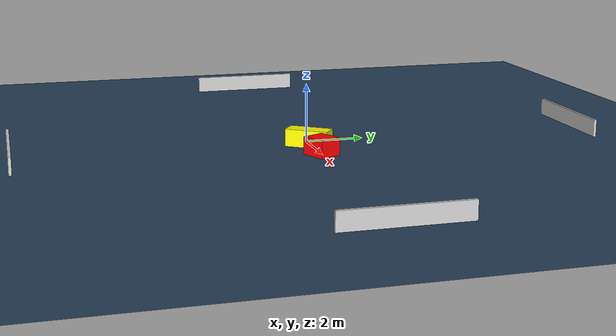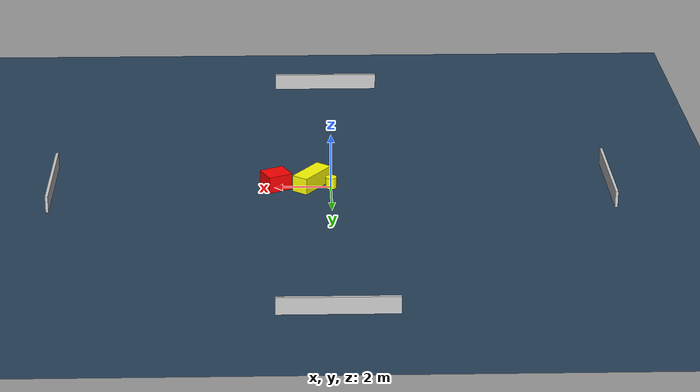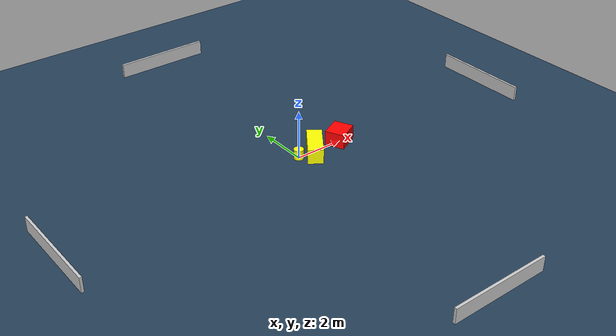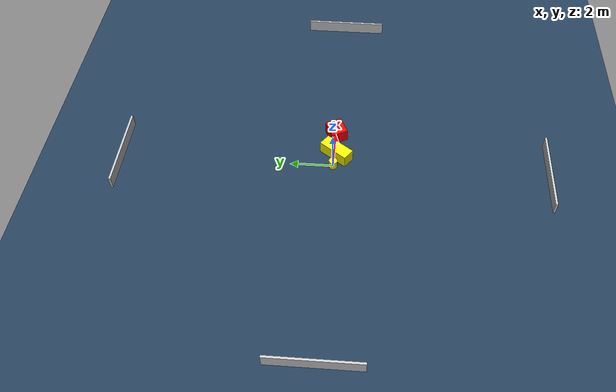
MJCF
<?xml version="1.0" ?>
<mujoco model="generated_environment">
  <option timestep="0.01" integrator="RK4" cone="elliptic"/>
  <default>
    <geom density="1"/>
  </default>
  <asset>
    <texture builtin="gradient" height="3072" name="skybox" rgb1="0.3 0.5 0.7" rgb2="0 0 0" type="skybox" width="512"/>
    <texture builtin="checker" height="300" name="groundplane" rgb1="0.2 0.3 0.4" rgb2="0.1 0.2 0.3" type="2d" width="300"/>
    <material name="groundplane" reflectance="0.2" texrepeat="5 5" texture="groundplane"/>
  </asset>
  <worldbody>
    <light dir="0 0 -1" directional="true" pos="0 0 1.5"/>
    <geom condim="3" friction="0.5 0.005 0.001" material="groundplane" name="floor" pos="0 0 0" size="0 0 0.05" type="plane"/>
    <body name="walls">
      <geom name="wall_1" condim="4" pos="-10.0 0.0 0.3" rgba="0.800000011920929 0.800000011920929 0.800000011920929 1.0" size="0.05 2.0 0.3" type="box"/>
      <geom name="wall_2" condim="4" pos="10.0 0.0 0.3" rgba="0.800000011920929 0.800000011920929 0.800000011920929 1.0" size="0.05 2.0 0.3" type="box"/>
      <geom name="wall_3" condim="4" pos="0.0 -10.0 0.3" rgba="0.800000011920929 0.800000011920929 0.800000011920929 1.0" size="2.0 0.05 0.3" type="box"/>
      <geom name="wall_4" condim="4" pos="0.0 10.0 0.3" rgba="0.800000011920929 0.800000011920929 0.800000011920929 1.0" size="2.0 0.05 0.3" type="box"/>
    </body>
    <body name="robot">
      <joint name="joint_x" type="slide" pos="0 0 0" axis="1 0 0"/>
      <joint name="joint_y" type="slide" pos="0 0 0" axis="0 1 0"/>
      <geom name="robot" type="cylinder" pos="0.0 0.0 0.2" size="0.2 0.2 0.0" mass="5.0" friction="1.0 0.005 0.0001" condim="4" rgba="1.0 1.0 0.0 1.0"/>
    </body>
    <body name="obstacle_1_movable">
      <geom name="obstacle_1_movable" condim="4" pos="0.6926735402284585 -0.11134558404979827 0.3" euler="0 0 53.76298047777893" friction="0.0 0.005 0.001" rgba="1.0 1.0 0.0 1.0" size="0.7515775655591088 0.3028677957206646 0.3" type="box" mass="0.1"/>
      <joint type="free"/>
    </body>
    <body name="obstacle_2_static">
      <geom name="obstacle_2_static" condim="4" pos="1.9781604211770862 -0.022993911956697085 0.3" euler="0 0 25.73247228679942" friction="0.0 0.005 0.001" rgba="1.0 0.0 0.0 1.0" size="0.4498377691866905 0.3956023784700211 0.3" type="box"/>
    </body>
  </worldbody>
  <actuator>
    <motor name="actuator_x" joint="joint_x" gear="1" ctrlrange="-1 1"/>
    <motor name="actuator_y" joint="joint_y" gear="1" ctrlrange="-1 1"/>
  </actuator>
</mujoco>
